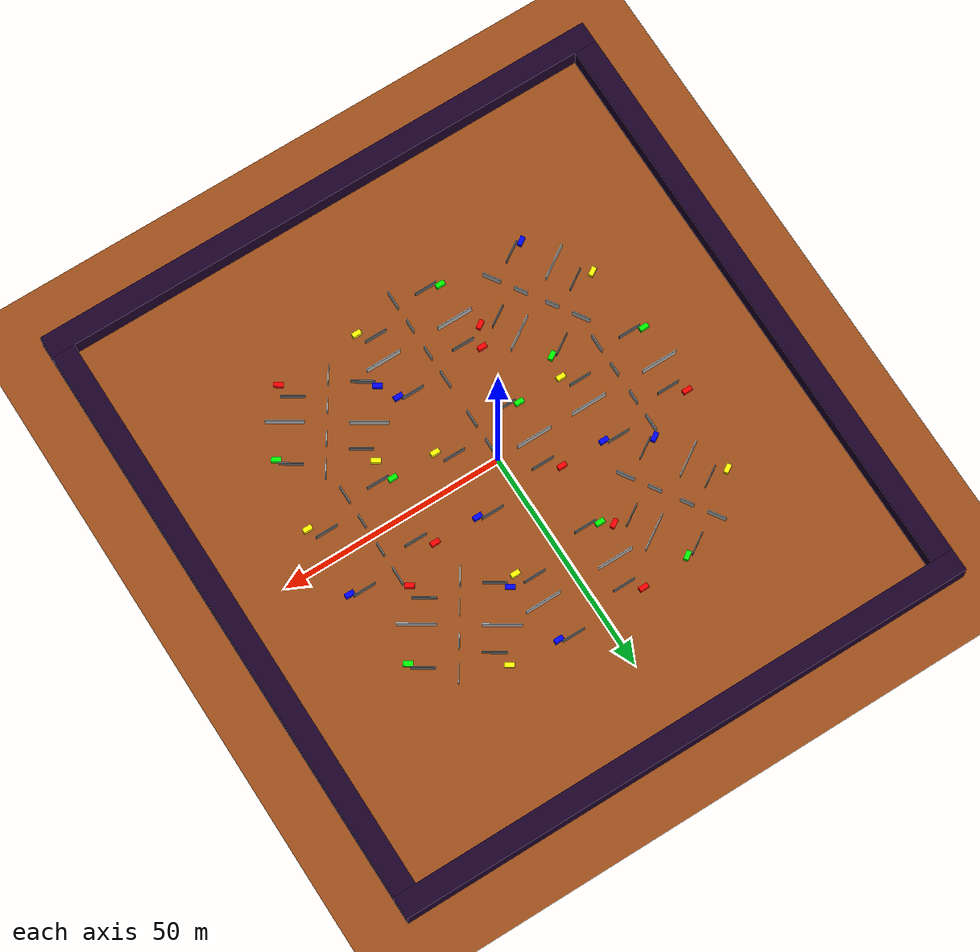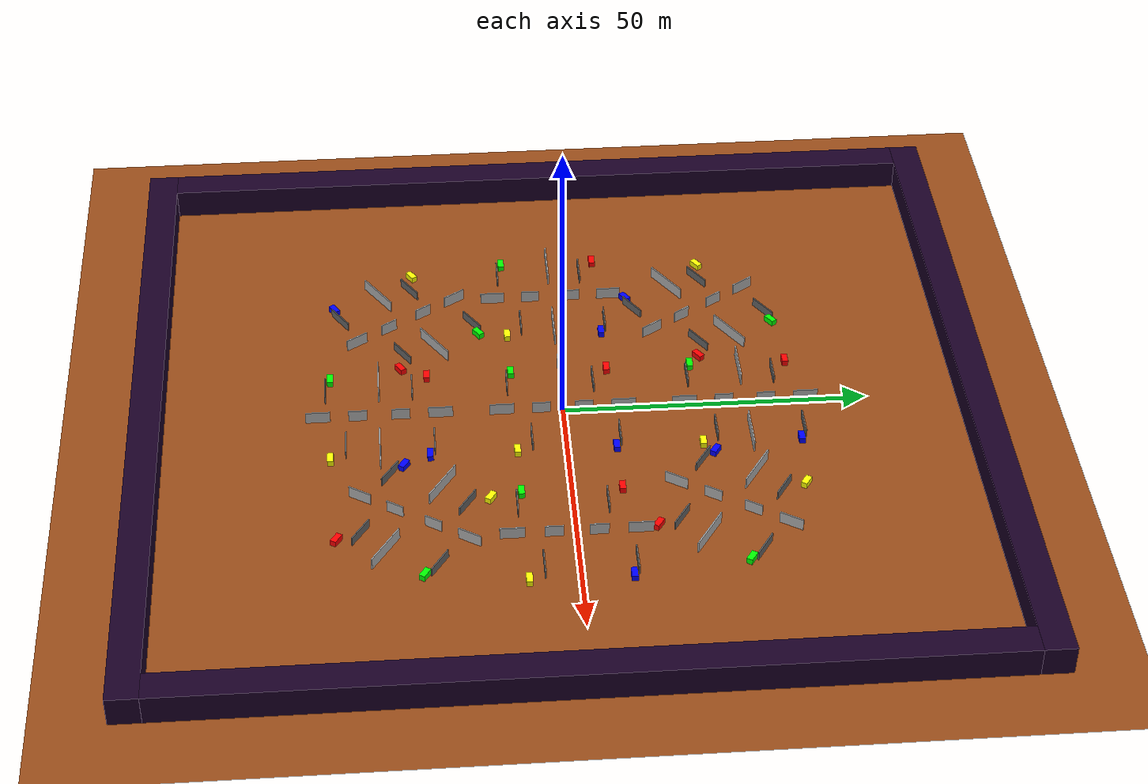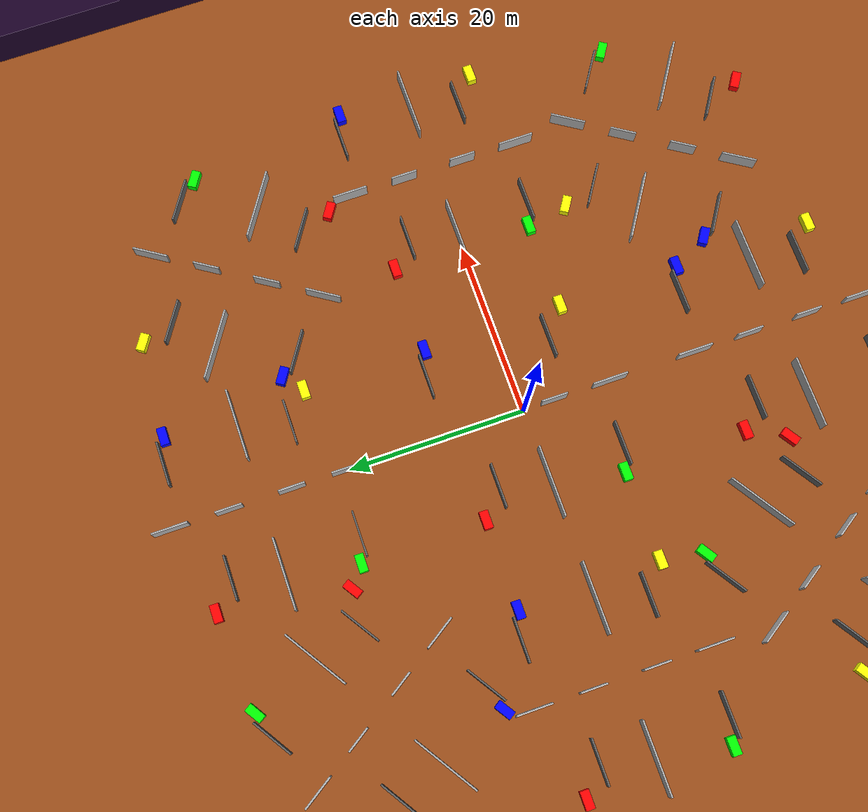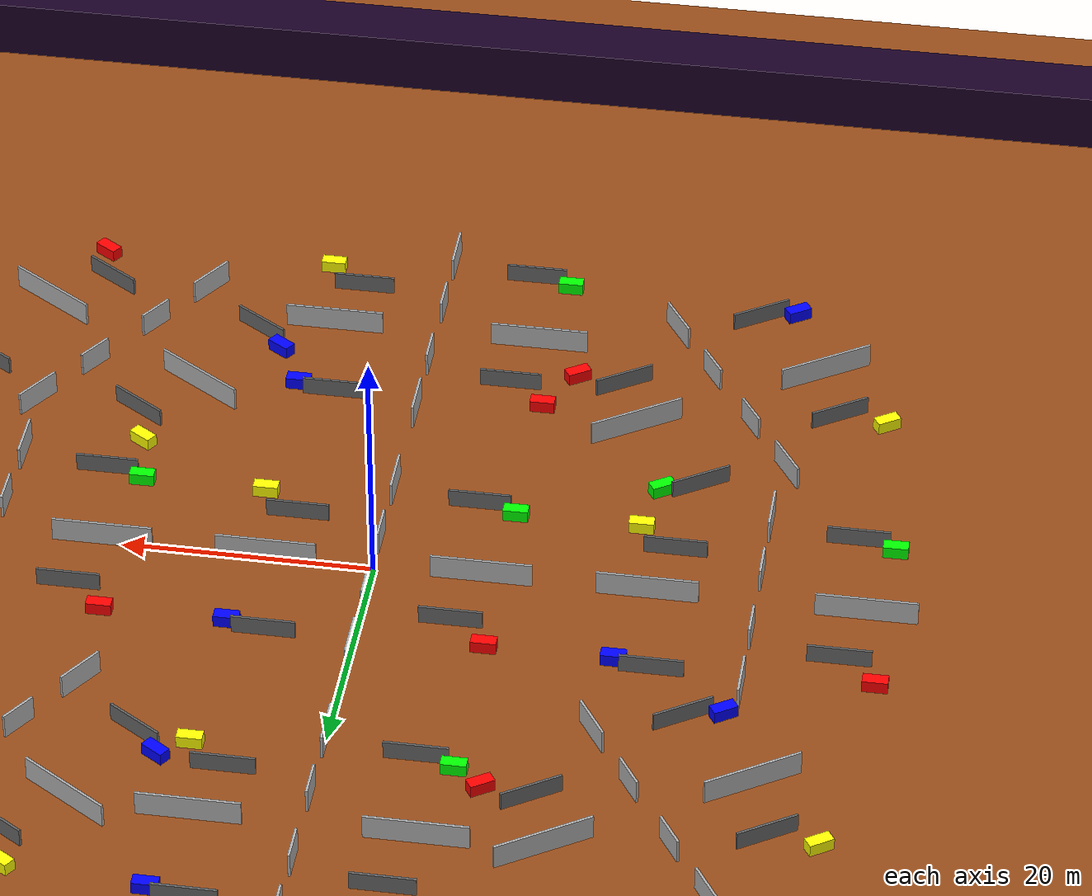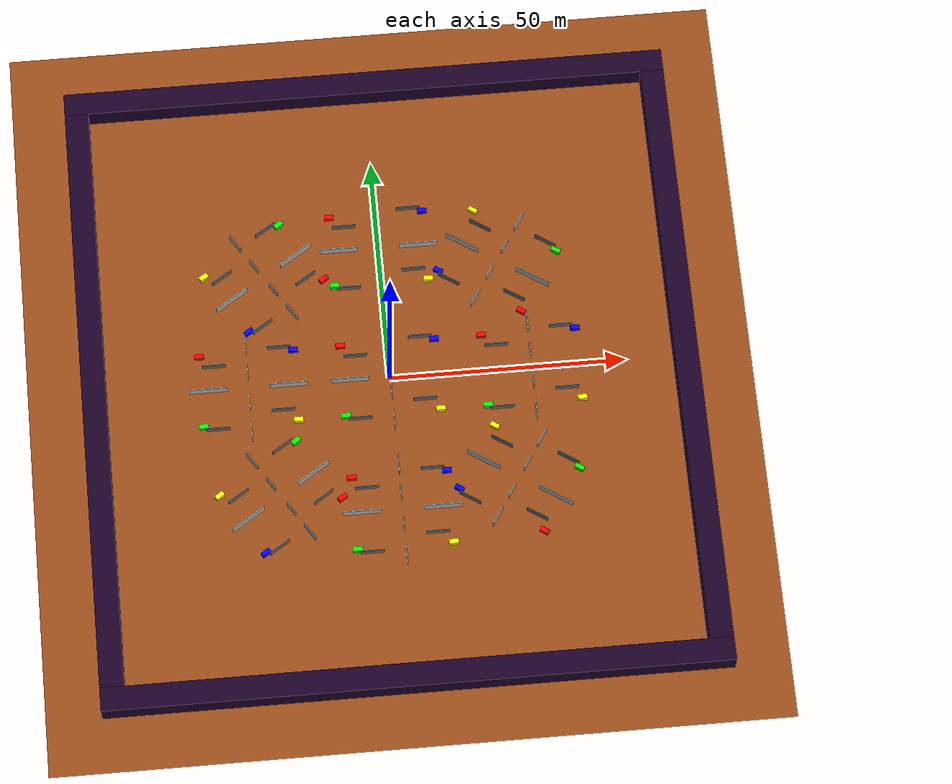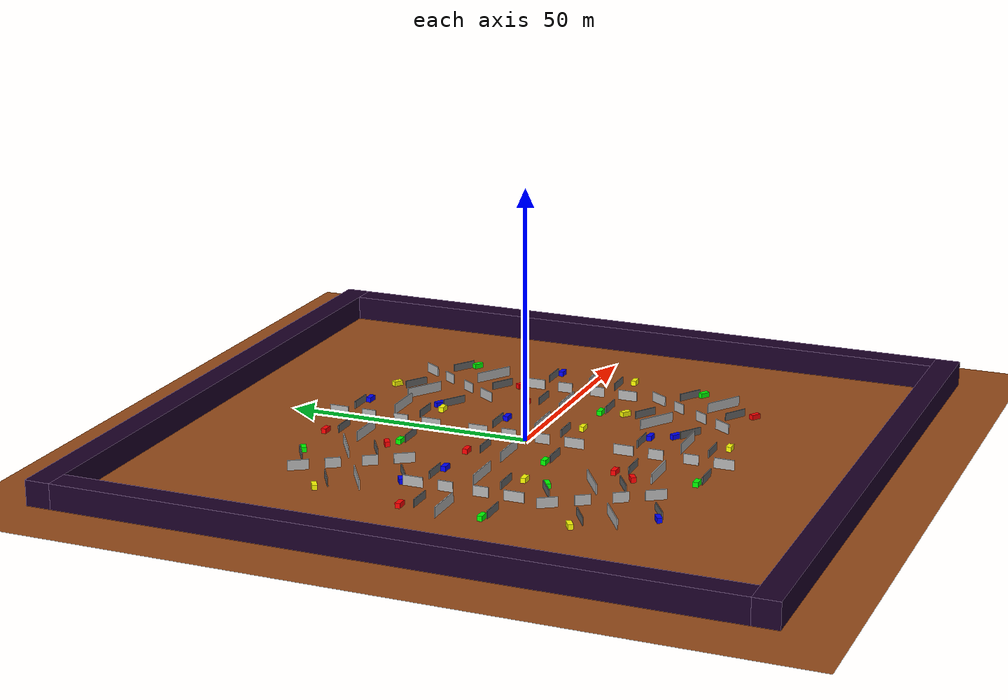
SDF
<sdf version="1.10">
 <world name="default">
  <plugin filename="gz-sim-physics-system" name="gz::sim::systems::Physics"/>
  <plugin filename="gz-sim-user-commands-system" name="gz::sim::systems::UserCommands"/>
  <plugin filename="gz-sim-scene-broadcaster-system" name="gz::sim::systems::SceneBroadcaster"/>
  <plugin filename="gz-sim-sensors-system" name="gz::sim::systems::Sensors">
   <render_engine>ogre</render_engine>
  </plugin>
  <include><uri>https://fuel.gazebosim.org/1.0/OpenRobotics/models/Sun</uri></include>
  <include><name>Black floor</name><uri>model://white_floor</uri></include>
  <include><name>Wall 1</name><uri>model://wall</uri><pose>62.5 0 2.5 0 0 0</pose></include>
  <include><name>Wall 2</name><uri>model://wall</uri><pose>0 67.5 2.5 0 0 -1.5708</pose></include>
  <include><name>Wall 3</name><uri>model://wall</uri><pose>0 -67.5 2.5 0 0 1.5708</pose></include>
  <include><name>Wall 4</name><uri>model://wall</uri><pose>-62.5 0 2.5 0 0 0</pose></include>
  <include><name>Obstacle Scenario</name><uri>model://obstacle_scenario</uri></include>
  <include>
   <name>Obstacle Scenario2</name>
   <uri>model://obstacle_scenario</uri>
   <pose>30 0 0 0 0 0</pose>
  </include>
  <include>
   <name>Obstacle Scenario3</name>
   <uri>model://obstacle_scenario</uri>
   <pose>0 30 0 0 0 0</pose>
  </include>
  <include>
   <name>Obstacle Scenario4</name>
   <uri>model://obstacle_scenario</uri>
   <pose>0 -30 0 0 0 0</pose>
  </include>
  <include>
   <name>Obstacle Scenario5</name>
   <uri>model://obstacle_scenario</uri>
   <pose>-30 0 0 0 0 0</pose>
  </include>
  <include>
   <name>Obstacle Scenario6</name>
   <uri>model://obstacle_scenario</uri>
   <pose>-25 -25 0 0 0 10</pose>
  </include>
  <include>
   <name>Obstacle Scenario7</name>
   <uri>model://obstacle_scenario</uri>
   <pose>25 25 0 0 0 -10</pose>
  </include>
  <include>
   <name>Obstacle Scenario8</name>
   <uri>model://obstacle_scenario</uri>
   <pose>-25 -25 0 0 0 10</pose>
  </include>
  <include>
   <name>Obstacle Scenario9</name>
   <uri>model://obstacle_scenario</uri>
   <pose>25 -25 0 0 0 -10</pose>
  </include>
  <include>
   <name>Obstacle Scenario10</name>
   <uri>model://obstacle_scenario</uri>
   <pose>-25 25 0 0 0 10</pose>
  </include>
 </world>
</sdf>

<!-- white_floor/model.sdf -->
<sdf version="1.10">
    <model name="white_floor">
        <static>true</static>
        <link name="floor_link">
            <collision name="collision">
                <geometry>
                    <plane>
                        <normal>0 0 1</normal>
                        <size>160 150</size>
                    </plane>
                </geometry>
            </collision>
            <visual name="visual">
                <geometry>
                    <plane>
                        <normal>0 0 1</normal>
                        <size>160 150</size>
                    </plane>
                </geometry>
                <material>
                    <ambient>0.6 0.3 0.1 1</ambient>
                    <diffuse>0.6 0.3 0.1 1</diffuse>
                    <specular>0.1 0.1 0.1 1</specular>
                </material>
            </visual>
        </link>
    </model>
</sdf>

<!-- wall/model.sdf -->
<sdf version="1.10">
    <model name='Wall'>
        <link name='box_link'>
            <inertial>
                <inertia>
                    <ixx>0.16666</ixx>
                    <ixy>0</ixy>
                    <ixz>0</ixz>
                    <iyy>0.16666</iyy>
                    <iyz>0</iyz>
                    <izz>0.16666</izz>
                </inertia>
                <mass>1</mass>
                <pose>0 0 0 0 0 0</pose>
            </inertial>
            <collision name='box_collision'>
                <geometry>
                    <box>
                        <size>5 150 5</size>
                    </box>
                </geometry>
                <surface>
                    <friction>
                        <ode />
                    </friction>
                    <bounce />
                    <contact />
                </surface>
            </collision>
            <visual name='box_visual'>
                <geometry>
                    <box>
                        <size>5 130 5</size>
                    </box>
                </geometry>
                <material>
                    <ambient>0.1 0.0 0.15 1</ambient>
                    <diffuse>0.1 0.0 0.15 1</diffuse>
                    <specular>1 1 1 1</specular>
                </material>
            </visual>
            <pose>0 0 0 0 0 0</pose>
            <enable_wind>false</enable_wind>
        </link>
        <static>false</static>
        <self_collide>false</self_collide>
    </model>
</sdf>

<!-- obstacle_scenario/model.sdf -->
<sdf version="1.10">

    <model name="obstacle_scenario">
    <!-- INTERNAL WALLS -->

    <!-- Horizontal wall across the middle with one central opening -->
    <model name="mid_wall_left">
        <static>true</static>
        <pose>-8.5 0 1 0 0 0</pose>
        <link name="link">
            <collision name="collision">
                <geometry>
                    <box>
                        <size>8 0.2 2</size>
                    </box>
                </geometry>
            </collision>
            <visual name="visual">
                <geometry>
                    <box>
                        <size>8 0.2 2</size>
                    </box>
                </geometry>
                <material>
                    <ambient>0.7 0.7 0.7 1</ambient>
                    <diffuse>0.7 0.7 0.7 1</diffuse>
                </material>
            </visual>
        </link>
    </model>

    <model name="mid_wall_right">
        <static>true</static>
        <pose>8.5 0 1 0 0 0</pose>
        <link name="link">
            <collision name="collision">
                <geometry>
                    <box>
                        <size>8 0.2 2</size>
                    </box>
                </geometry>
            </collision>
            <visual name="visual">
                <geometry>
                    <box>
                        <size>8 0.2 2</size>
                    </box>
                </geometry>
                <material>
                    <ambient>0.7 0.7 0.7 1</ambient>
                    <diffuse>0.7 0.7 0.7 1</diffuse>
                </material>
            </visual>
        </link>
    </model>

    <!-- Vertical wall across the middle with offset openings -->
    <!-- top segment -->
    <model name="mid_vertical_top">
        <static>true</static>
        <pose>0 10 1 0 0 0</pose>
        <link name="link">
            <collision name="collision">
                <geometry>
                    <box>
                        <size>0.2 4 2</size>
                    </box>
                </geometry>
            </collision>
            <visual name="visual">
                <geometry>
                    <box>
                        <size>0.2 4 2</size>
                    </box>
                </geometry>
                <material>
                    <ambient>0.7 0.7 0.7 1</ambient>
                    <diffuse>0.7 0.7 0.7 1</diffuse>
                </material>
            </visual>
        </link>
    </model>

    <!-- upper-middle segment -->
    <model name="mid_vertical_upper">
        <static>true</static>
        <pose>0 3.5 1 0 0 0</pose>
        <link name="link">
            <collision name="collision">
                <geometry>
                    <box>
                        <size>0.2 3 2</size>
                    </box>
                </geometry>
            </collision>
            <visual name="visual">
                <geometry>
                    <box>
                        <size>0.2 3 2</size>
                    </box>
                </geometry>
                <material>
                    <ambient>0.7 0.7 0.7 1</ambient>
                    <diffuse>0.7 0.7 0.7 1</diffuse>
                </material>
            </visual>
        </link>
    </model>

    <!-- lower-middle segment -->
    <model name="mid_vertical_lower">
        <static>true</static>
        <pose>0 -3.5 1 0 0 0</pose>
        <link name="link">
            <collision name="collision">
                <geometry>
                    <box>
                        <size>0.2 3 2</size>
                    </box>
                </geometry>
            </collision>
            <visual name="visual">
                <geometry>
                    <box>
                        <size>0.2 3 2</size>
                    </box>
                </geometry>
                <material>
                    <ambient>0.7 0.7 0.7 1</ambient>
                    <diffuse>0.7 0.7 0.7 1</diffuse>
                </material>
            </visual>
        </link>
    </model>

    <!-- bottom segment -->
    <model name="mid_vertical_bottom">
        <static>true</static>
        <pose>0 -10 1 0 0 0</pose>
        <link name="link">
            <collision name="collision">
                <geometry>
                    <box>
                        <size>0.2 4 2</size>
                    </box>
                </geometry>
            </collision>
            <visual name="visual">
                <geometry>
                    <box>
                        <size>0.2 4 2</size>
                    </box>
                </geometry>
                <material>
                    <ambient>0.7 0.7 0.7 1</ambient>
                    <diffuse>0.7 0.7 0.7 1</diffuse>
                </material>
            </visual>
        </link>
    </model>

    <!-- LOCAL BLOCKERS / AISLE OBSTACLES -->

    <!-- Top-left quadrant blocker -->
    <model name="blocker_tl">
        <static>true</static>
        <pose>-7 5.5 0.75 0 0 0</pose>
        <link name="link">
            <collision name="collision">
                <geometry>
                    <box>
                        <size>5 0.2 1.5</size>
                    </box>
                </geometry>
            </collision>
            <visual name="visual">
                <geometry>
                    <box>
                        <size>5 0.2 1.5</size>
                    </box>
                </geometry>
                <material>
                    <ambient>0.4 0.4 0.4 1</ambient>
                    <diffuse>0.4 0.4 0.4 1</diffuse>
                </material>
            </visual>
        </link>
    </model>

    <!-- Top-right quadrant blocker -->
    <model name="blocker_tr">
        <static>true</static>
        <pose>7 8.8 0.75 0 0 0</pose>
        <link name="link">
            <collision name="collision">
                <geometry>
                    <box>
                        <size>5 0.2 1.5</size>
                    </box>
                </geometry>
            </collision>
            <visual name="visual">
                <geometry>
                    <box>
                        <size>5 0.2 1.5</size>
                    </box>
                </geometry>
                <material>
                    <ambient>0.4 0.4 0.4 1</ambient>
                    <diffuse>0.4 0.4 0.4 1</diffuse>
                </material>
            </visual>
        </link>
    </model>

    <!-- Bottom-left quadrant blocker -->
    <model name="blocker_bl">
        <static>true</static>
        <pose>-7 -8.8 0.75 0 0 0</pose>
        <link name="link">
            <collision name="collision">
                <geometry>
                    <box>
                        <size>5 0.2 1.5</size>
                    </box>
                </geometry>
            </collision>
            <visual name="visual">
                <geometry>
                    <box>
                        <size>5 0.2 1.5</size>
                    </box>
                </geometry>
                <material>
                    <ambient>0.4 0.4 0.4 1</ambient>
                    <diffuse>0.4 0.4 0.4 1</diffuse>
                </material>
            </visual>
        </link>
    </model>

    <!-- Bottom-right quadrant blocker -->
    <model name="blocker_br">
        <static>true</static>
        <pose>7 -5.5 0.75 0 0 0</pose>
        <link name="link">
            <collision name="collision">
                <geometry>
                    <box>
                        <size>5 0.2 1.5</size>
                    </box>
                </geometry>
            </collision>
            <visual name="visual">
                <geometry>
                    <box>
                        <size>5 0.2 1.5</size>
                    </box>
                </geometry>
                <material>
                    <ambient>0.4 0.4 0.4 1</ambient>
                    <diffuse>0.4 0.4 0.4 1</diffuse>
                </material>
            </visual>
        </link>
    </model>

    <!-- SHELVES / COLORED BOXES -->

    <model name="shelf_red">
        <static>true</static>
        <pose>-10 8 0.5 0 0 0</pose>
        <link name="link">
            <collision name="collision">
                <geometry>
                    <box>
                        <size>2 1 1</size>
                    </box>
                </geometry>
            </collision>
            <visual name="visual">
                <geometry>
                    <box>
                        <size>2 1 1</size>
                    </box>
                </geometry>
                <material>
                    <ambient>1 0 0 1</ambient>
                    <diffuse>1 0 0 1</diffuse>
                </material>
            </visual>
        </link>
    </model>

    <model name="shelf_blue">
        <static>true</static>
        <pose>10 8 0.5 0 0 0</pose>
        <link name="link">
            <collision name="collision">
                <geometry>
                    <box>
                        <size>2 1 1</size>
                    </box>
                </geometry>
            </collision>
            <visual name="visual">
                <geometry>
                    <box>
                        <size>2 1 1</size>
                    </box>
                </geometry>
                <material>
                    <ambient>0 0 1 1</ambient>
                    <diffuse>0 0 1 1</diffuse>
                </material>
            </visual>
        </link>
    </model>

    <model name="shelf_green">
        <static>true</static>
        <pose>-10 -8 0.5 0 0 0</pose>
        <link name="link">
            <collision name="collision">
                <geometry>
                    <box>
                        <size>2 1 1</size>
                    </box>
                </geometry>
            </collision>
            <visual name="visual">
                <geometry>
                    <box>
                        <size>2 1 1</size>
                    </box>
                </geometry>
                <material>
                    <ambient>0 1 0 1</ambient>
                    <diffuse>0 1 0 1</diffuse>
                </material>
            </visual>
        </link>
    </model>

    <model name="shelf_yellow">
        <static>true</static>
        <pose>10 -8 0.5 0 0 0</pose>
        <link name="link">
            <collision name="collision">
                <geometry>
                    <box>
                        <size>2 1 1</size>
                    </box>
                </geometry>
            </collision>
            <visual name="visual">
                <geometry>
                    <box>
                        <size>2 1 1</size>
                    </box>
                </geometry>
                <material>
                    <ambient>1 1 0 1</ambient>
                    <diffuse>1 1 0 1</diffuse>
                </material>
            </visual>
        </link>
    </model>
    </model>
</sdf>
